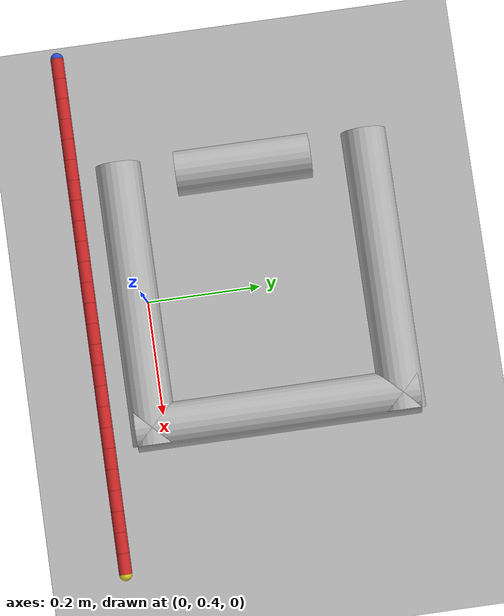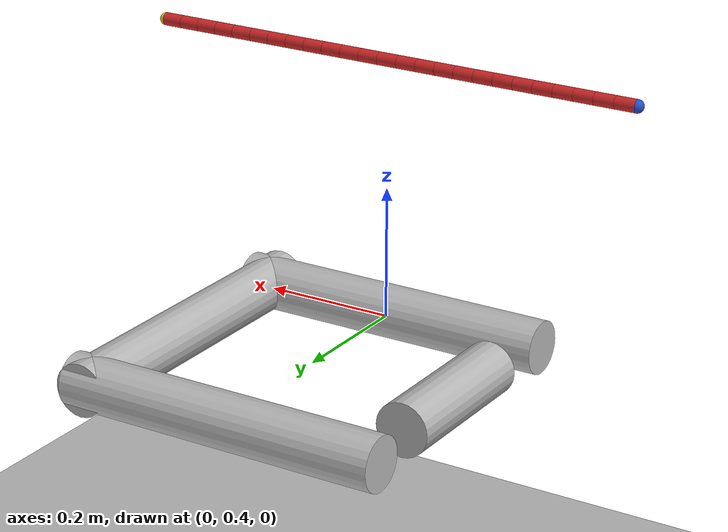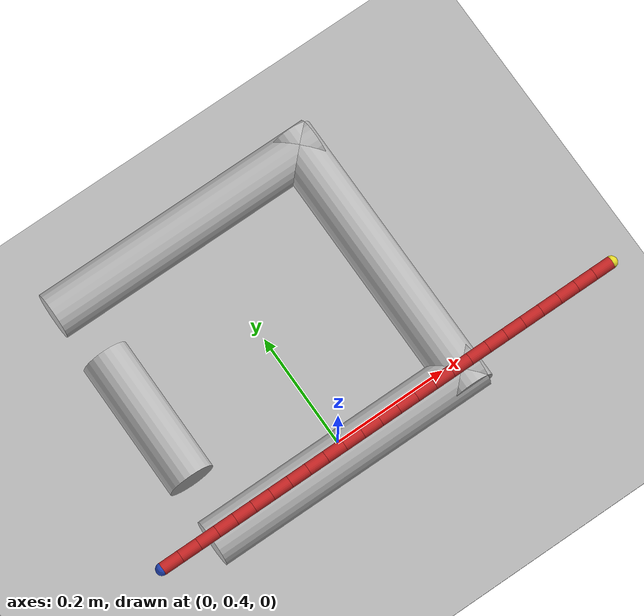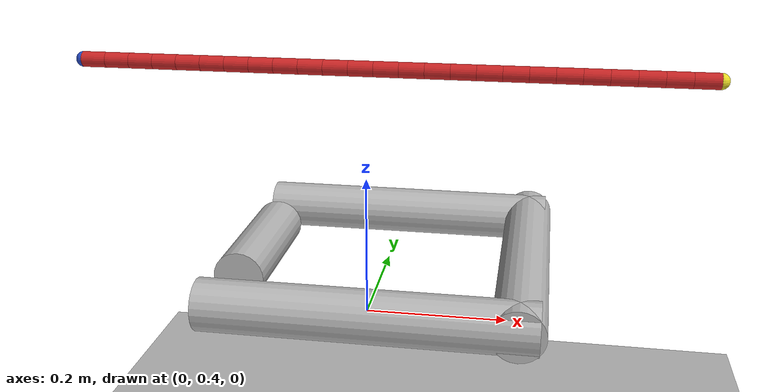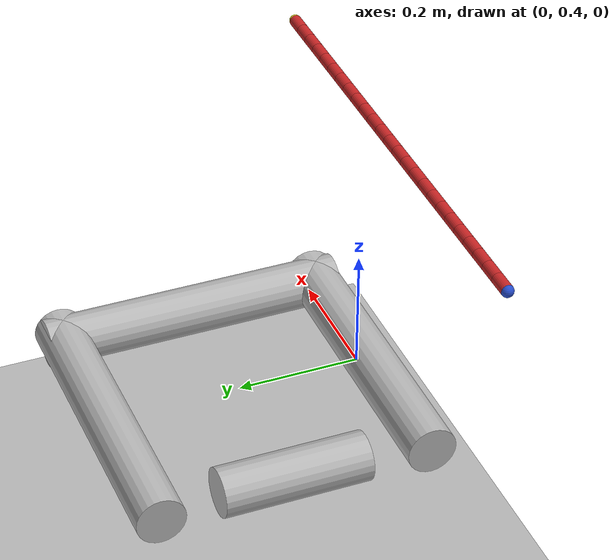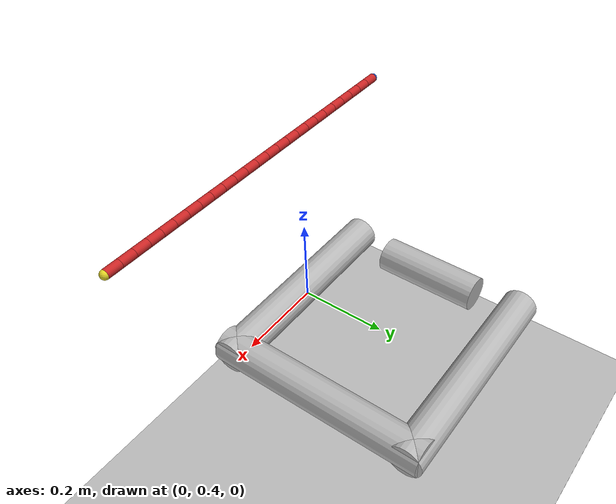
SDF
<sdf version="1.4">
 <world name="default">
  <scene>
   <grid>false</grid>
   <origin_visual>false</origin_visual>
   <sky><clouds><speed>12</speed></clouds></sky>
  </scene>
  <physics name="ode" type="ode">
   <max_step_size>0.01</max_step_size>
   <real_time_factor>1</real_time_factor>
   <real_time_update_rate>0</real_time_update_rate>
   <ode>
    <solver>
     <island_threads>2</island_threads>
     <type>quick</type>
     <iters>100</iters>
     <sor>1.0</sor>
     <use_dynamic_moi_rescaling>false</use_dynamic_moi_rescaling>
    </solver>
    <constraints><erp>0.2</erp></constraints>
   </ode>
  </physics>
  <plugin name="arm_gazebo_ros" filename="libarm_gazebo_ros_plugin.so"/>
  <plugin name="gazebo_ros_tf_plugin" filename="libgazebo_ros_tf_plugin.so"/>
  <plugin name="ros_link_attacher_plugin" filename="libgazebo_ros_link_attacher.so"/>
  <plugin name="position_3d_plugin" filename="libposition_3d_plugin.so"/>
  <plugin name="collision_map_plugin" filename="libcollision_map_plugin.so"/>
  <include><uri>model://my_ground_plane</uri><pose>0 0 -0.38 0 0 0</pose></include>
  <include><uri>model://sun</uri></include>
  <include><name>ring</name><uri>model://ring</uri><pose>0 0.6 0 0 0 1.5707</pose></include>
  <include><uri>model://rope_3d</uri><pose>-0.36 0.33 0.37 0 0 0</pose></include>
 </world>
</sdf>

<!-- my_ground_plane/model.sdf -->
<sdf version="1.5">
    <model name="my_ground_plane">
        <static>true</static>
            <allow_auto_disable>true</allow_auto_disable>
        <link name="link">
            <collision name="collision">
                <geometry>
                    <plane>
                        <normal>0 0 1</normal>
                        <size>4 4</size>
                    </plane>
                </geometry>
                <surface>
                    <friction>
                        <ode>
                            <mu>1000</mu>
                            <mu2>1000</mu2>
                        </ode>
                    </friction>
                    <contact>
                        <ode>
                            <kp>1e15</kp>
                            <kd>1e10</kd>
                        </ode>
                    </contact>
                </surface>
            </collision>
            <visual name="visual">
                <cast_shadows>false</cast_shadows>
                <geometry>
                    <plane>
                        <normal>0 0 1</normal>
                        <size>4 4</size>
                    </plane>
                </geometry>
                <material>
                    <script>
                        <uri>model://my_ground_plane/concrete.material</uri>
                        <name>ConcreteTexture</name>
                    </script>
                </material>
            </visual>
        </link>
    </model>
</sdf>

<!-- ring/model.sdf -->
<sdf version='1.7'>
  <model name='ring'>
    <link name='link_1'>
      <kinematic>1</kinematic>
      <inertial>
        <mass>0.00070675</mass>
        <inertia>
          <ixx>8.7e-06</ixx>
          <ixy>0</ixy>
          <ixz>0</ixz>
          <iyy>8.7e-06</iyy>
          <iyz>0</iyz>
          <izz>1.6e-07</izz>
        </inertia>
        <pose>0 0 0 0 -0 0</pose>
      </inertial>
      <pose>0 -0.22 0 0 -1.5707 0</pose>
      <visual name='visual'>
        <geometry>
          <cylinder>
            <radius>0.04</radius>
            <length>0.5</length>
          </cylinder>
        </geometry>
      </visual>
      <collision name='collision'>
        <geometry>
          <cylinder>
            <radius>0.04</radius>
            <length>0.5</length>
          </cylinder>
        </geometry>
      </collision>
    </link>
    <link name='link_1_clone'>
      <inertial>
        <mass>0.00070675</mass>
        <inertia>
          <ixx>8.7e-06</ixx>
          <ixy>0</ixy>
          <ixz>0</ixz>
          <iyy>8.7e-06</iyy>
          <iyz>0</iyz>
          <izz>1.6e-07</izz>
        </inertia>
        <pose>0 0 0 0 -0 0</pose>
      </inertial>
      <pose>-0.22 -0 0 -1.56956 -1.5707 -0.00124</pose>
      <kinematic>1</kinematic>
      <visual name='visual'>
        <pose>0 0 0 0 -0 0</pose>
        <geometry>
          <cylinder>
            <radius>0.04</radius>
            <length>0.5</length>
          </cylinder>
        </geometry>
      </visual>
      <collision name='collision'>
        <geometry>
          <cylinder>
            <radius>0.04</radius>
            <length>0.5</length>
          </cylinder>
        </geometry>
      </collision>
    </link>
    <link name='link_1_clone_0'>
      <inertial>
        <mass>0.00070675</mass>
        <inertia>
          <ixx>8.7e-06</ixx>
          <ixy>0</ixy>
          <ixz>0</ixz>
          <iyy>8.7e-06</iyy>
          <iyz>0</iyz>
          <izz>1.6e-07</izz>
        </inertia>
      </inertial>
      <pose>0.22 -0 0 1.57049 -1.5707 -0.000307</pose>
      <kinematic>1</kinematic>
      <visual name='visual'>
        <pose>0 0 0 0 -0 0</pose>
        <geometry>
          <cylinder>
            <radius>0.04</radius>
            <length>0.5</length>
          </cylinder>
        </geometry>
      </visual>
      <collision name='collision'>
        <geometry>
          <cylinder>
            <radius>0.04</radius>
            <length>0.5</length>
          </cylinder>
        </geometry>
      </collision>
    </link>
    <link name='link_1_clone_1'>
      <inertial>
        <mass>0.00037175</mass>
        <inertia>
          <ixx>1.3e-06</ixx>
          <ixy>0</ixy>
          <ixz>0</ixz>
          <iyy>1.3e-06</iyy>
          <iyz>0</iyz>
          <izz>9e-08</izz>
        </inertia>
      </inertial>
      <pose>0 0.22 0 0 -1.5707 0</pose>
      <kinematic>1</kinematic>
      <visual name='visual'>
        <pose>0 0 0 0 -0 0</pose>
        <geometry>
          <cylinder>
            <radius>0.04</radius>
            <length>0.24</length>
          </cylinder>
        </geometry>
      </visual>
      <collision name='collision'>
        <geometry>
          <cylinder>
            <radius>0.04</radius>
            <length>0.24</length>
          </cylinder>
        </geometry>
      </collision>
    </link>
    <joint name='link_1_JOINT_0' type='fixed'>
      <parent>link_1</parent>
      <child>link_1_clone_0</child>
    </joint>
    <joint name='link_1_JOINT_1' type='fixed'>
      <parent>link_1</parent>
      <child>link_1_clone</child>
    </joint>
    <joint name='link_1_JOINT_2' type='fixed'>
      <parent>link_1</parent>
      <child>link_1_clone_1</child>
    </joint>
    <allow_auto_disable>1</allow_auto_disable>
  </model>
</sdf>
